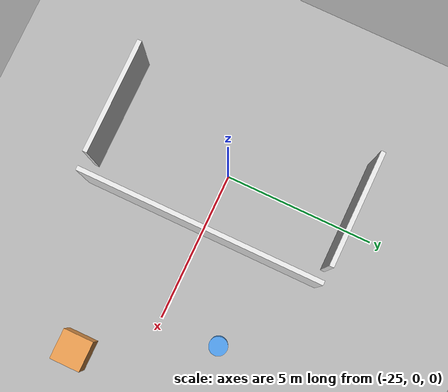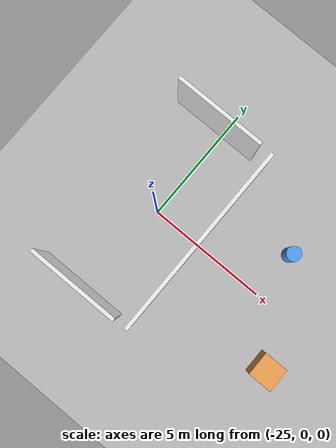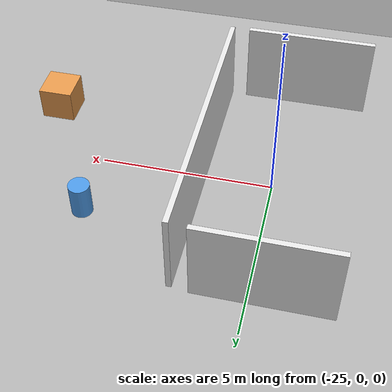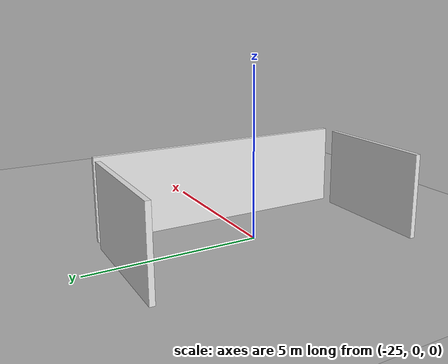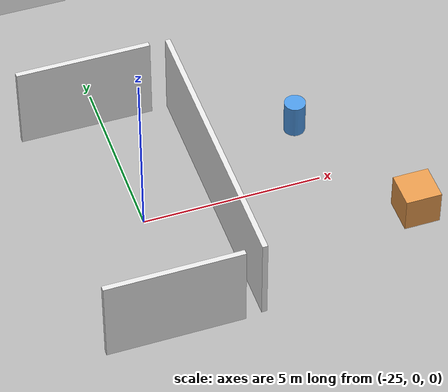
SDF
<sdf version="1.9">
 <world name="bigHHH">
  <physics type="dartsim" name="default_physics" default="true">
   <max_step_size>0.01</max_step_size>
   <real_time_factor>1.0</real_time_factor>
   <real_time_update_rate>100</real_time_update_rate>
  </physics>
  <scene>
   <ambient>0.4 0.4 0.4 1.0</ambient>
   <background>0.5 0.5 0.5 1.0</background>
   <shadows>true</shadows>
   <grid>false</grid>
   <sky><clouds><speed>12</speed></clouds></sky>
  </scene>
  <light type="directional" name="sun">
   <pose>0 0 10 0 0 0</pose>
   <diffuse>0.8 0.8 0.8 1</diffuse>
   <specular>0.2 0.2 0.2 1</specular>
   <attenuation>
    <range>1000</range>
    <constant>0.9</constant>
    <linear>0.01</linear>
    <quadratic>0.001</quadratic>
   </attenuation>
   <direction>-0.5 0.1 -0.9</direction>
  </light>
  <model name="ground_plane">
   <static>true</static>
   <link name="link">
    <collision name="collision">
     <geometry><plane><normal>0 0 1</normal><size>100 100</size></plane></geometry>
    </collision>
    <visual name="visual">
     <geometry><plane><normal>0 0 1</normal><size>100 100</size></plane></geometry>
     <material>
      <ambient>0.3 0.3 0.3 1</ambient>
      <diffuse>0.7 0.7 0.7 1</diffuse>
      <specular>0.1 0.1 0.1 1</specular>
     </material>
    </visual>
   </link>
  </model>
  <model name="H_building">
   <static>true</static>
   <link name="left_wall">
    <pose>-25.4 -4.0 1.25 0 0 0</pose>
    <collision name="collision"><geometry><box><size>3.75 0.15 2.5</size></box></geometry></collision>
    <visual name="visual">
     <geometry><box><size>3.75 0.15 2.5</size></box></geometry>
     <material>
      <ambient>0.8 0.8 0.8 1</ambient>
      <diffuse>0.9 0.9 0.9 1</diffuse>
      <specular>0.1 0.1 0.1 1</specular>
     </material>
    </visual>
   </link>
   <link name="right_wall">
    <pose>-25.4 4.0 1.25 0 0 0</pose>
    <collision name="collision"><geometry><box><size>3.75 0.15 2.5</size></box></geometry></collision>
    <visual name="visual">
     <geometry><box><size>3.75 0.15 2.5</size></box></geometry>
     <material>
      <ambient>0.8 0.8 0.8 1</ambient>
      <diffuse>0.9 0.9 0.9 1</diffuse>
      <specular>0.1 0.1 0.1 1</specular>
     </material>
    </visual>
   </link>
   <link name="middle_wall">
    <pose>-23.0 0.0 1.25 0 0 1.57</pose>
    <collision name="collision"><geometry><box><size>8.0 0.15 2.5</size></box></geometry></collision>
    <visual name="visual">
     <geometry><box><size>8.0 0.15 2.5</size></box></geometry>
     <material>
      <ambient>0.8 0.8 0.8 1</ambient>
      <diffuse>0.9 0.9 0.9 1</diffuse>
      <specular>0.1 0.1 0.1 1</specular>
     </material>
    </visual>
   </link>
   <link name="obstacle1">
    <pose>-20.0 2.0 0.5 0 0 0</pose>
    <collision name="collision">
     <geometry><cylinder><radius>0.3</radius><length>1.0</length></cylinder></geometry>
    </collision>
    <visual name="visual">
     <geometry><cylinder><radius>0.3</radius><length>1.0</length></cylinder></geometry>
     <material><ambient>0.2 0.5 0.8 1</ambient><diffuse>0.3 0.6 0.9 1</diffuse></material>
    </visual>
   </link>
   <link name="obstacle2">
    <pose>-18.0 -2.0 0.5 0 0 0</pose>
    <collision name="collision"><geometry><box><size>1.0 1.0 1.0</size></box></geometry></collision>
    <visual name="visual">
     <geometry><box><size>1.0 1.0 1.0</size></box></geometry>
     <material><ambient>0.8 0.5 0.2 1</ambient><diffuse>0.9 0.6 0.3 1</diffuse></material>
    </visual>
   </link>
  </model>
 </world>
</sdf>
